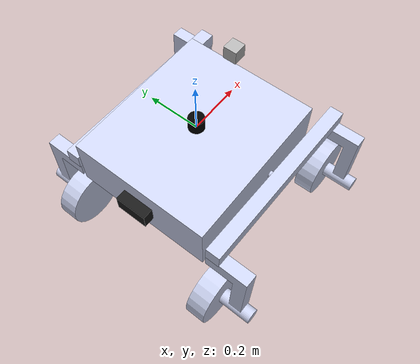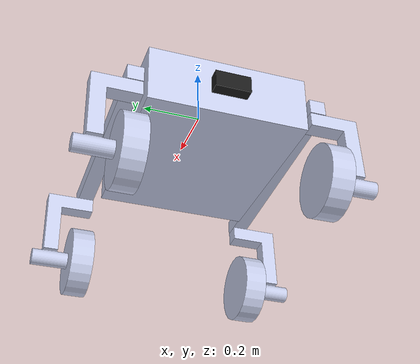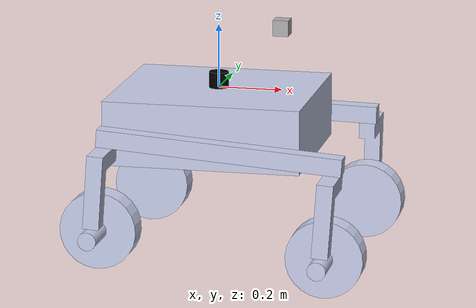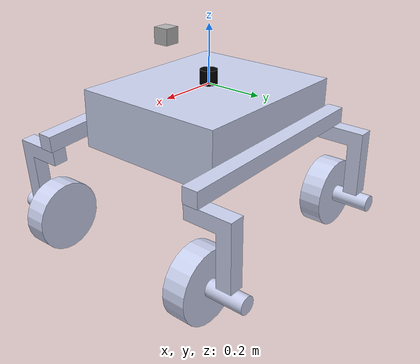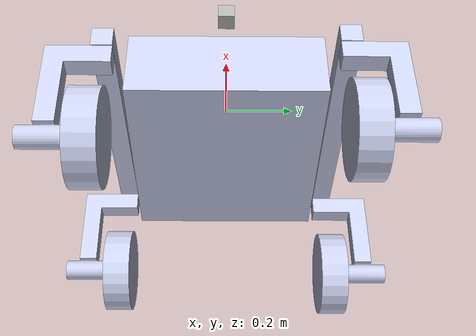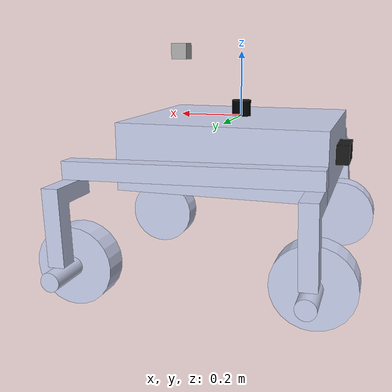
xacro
<?xml version="1.0" encoding="utf-8"?>
<!--
  Simplified Swerve Drive Robot Description
  Main xacro file that combines the robot structure with ROS2 control interfaces
  Usage: xacro simplified_swerve.urdf.xacro use_sim:=true/false
-->
<robot xmlns:xacro="http://www.ros.org/wiki/xacro" name="simplified_swerve">

  <!-- Include the robot structure macro -->
  <xacro:include filename="$(find urc_hw_description)/urdf/simplified_swerve/simplified_swerve_macro.xacro" />

  <!-- Include the status light -->
  <xacro:include filename="$(find urc_hw_description)/urdf/simplified_swerve/simplified_swerve_status_light.xacro" />

  <!-- Include the ROS2 control interfaces -->
  <xacro:include filename="$(find urc_hw_description)/urdf/simplified_swerve/simplified_swerve_ros2_control.xacro" />

  <!-- Include Sensor interfaces -->

  <!-- Define parameters with defaults -->
  <xacro:arg name="use_sim" default="false" />

  <!-- Create the robot structure -->
  <xacro:simplified_swerve />

  <!-- Add the status light -->
  <xacro:simplified_swerve_status_light />

  <!-- Add ROS2 control interfaces -->
  <xacro:simplified_swerve_ros2_control use_sim="$(arg use_sim)" />
  <!-- Add Sensor interfaces -->
  <xacro:include filename="$(find urc_hw_description)/urdf/simplified_swerve/simplified_swerve_sensors.xacro" />

  <!-- Add world link for simulation -->

  <!-- Add Gazebo-specific elements for simulation -->
  <xacro:if value="$(arg use_sim)">
    <!-- Gazebo physics settings -->
    <gazebo>
      <physics name="gazebo" type="ode">
        <gravity>0 0 -9.8066</gravity>
        <ode>
          <solver>
            <type>quick</type>
            <iters>10</iters>
            <sor>1.3</sor>
            <use_dynamic_moi_rescaling>0</use_dynamic_moi_rescaling>
          </solver>
          <constraints>
            <cfm>0.00001</cfm>
            <erp>0.2</erp>
            <contact_max_correcting_vel>100.0</contact_max_correcting_vel>
            <contact_surface_layer>0.001</contact_surface_layer>
          </constraints>
        </ode>
        <real_time_update_rate>1000.0</real_time_update_rate>
        <max_step_size>0.001</max_step_size>
        <real_time_factor>1</real_time_factor>
        <max_contacts>20</max_contacts>
      </physics>

    </gazebo>
  </xacro:if>

</robot>

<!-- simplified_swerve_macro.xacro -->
<!--
  Simplified Swerve Drive Macro
  This xacro macro defines the simplified swerve drive robot structure
-->
<robot xmlns:xacro="http://www.ros.org/wiki/xacro">

  <!-- Define the simplified swerve drive macro -->
  <xacro:macro name="simplified_swerve">

  <!-- replacing package:// -->
  <xacro:property name="package_path" value="file://$(find urc_hw_description)"/>

  <!-- Wheel Cylinder Geometry -->
  <xacro:property name="wheel_radius" value="0.119888" />
  <xacro:property name="wheel_length" value="0.0762" />
  <!-- remove wheel_origin_xyz if not needed -->
  <xacro:property name="wheel_origin_xyz_left" value="0 0.0381 0" />
  <xacro:property name="wheel_origin_xyz_right" value="0 -0.0381 0" />
  <xacro:property name="swivel_damping_factor" value = "0.8" />
  <xacro:property name="mu" value="0.8" />
    <link
      name="base_link">
      <inertial>
        <origin
          xyz="0 0 0"
          rpy="0 0 0" />
        <mass
          value="66.4215786923517" />
        <inertia
          ixx="1.81696810328787"
          ixy="-6.9338212464152E-17"
          ixz="7.20648103905395E-05"
          iyy="2.32403347252879"
          iyz="-9.74563613040897E-18"
          izz="3.69433679282844" />
      </inertial>
      <visual>
        <origin
          xyz="0 0 0"
          rpy="0 0 0" />
        <geometry>
          <mesh
            filename="${package_path}/models/simplified_swerve/Base_Link.STL" />
        </geometry>
        <material
          name="">
          <color
            rgba="0.792156862745098 0.819607843137255 0.933333333333333 1" />
        </material>
      </visual>
      <collision>
        <origin
          xyz="0 0 0"
          rpy="0 0 0" />
        <geometry>
          <mesh
            filename="${package_path}/models/simplified_swerve/Base_Link.STL" />
        </geometry>
      </collision>
    </link>
    <link
      name="L_Rocker_Link">
      <inertial>
        <origin
          xyz="-5.55111512312578E-17 0.0272622783776632 0.000169281253660614"
          rpy="0 0 0" />
        <mass
          value="2.2109729871291" />
        <inertia
          ixx="0.00109676826241139"
          ixy="-2.18257314584443E-18"
          ixz="-3.3881317890172E-19"
          iyy="0.106059793697663"
          iyz="3.15433975980145E-08"
          izz="0.106062641373692" />
      </inertial>
      <visual>
        <origin
          xyz="0 0 0"
          rpy="0 0 0" />
        <geometry>
          <mesh
            filename="${package_path}/models/simplified_swerve/L_Rocker_Link.STL" />
        </geometry>
        <material
          name="">
          <color
            rgba="0.792156862745098 0.819607843137255 0.933333333333333 1" />
        </material>
      </visual>
      <collision>
        <origin
          xyz="0 0 0"
          rpy="0 0 0" />
        <geometry>
          <mesh
            filename="${package_path}/models/simplified_swerve/L_Rocker_Link.STL" />
        </geometry>
      </collision>
    </link>
    <joint
      name="L_Rocker_Joint"
      type="revolute">
      <origin
        xyz="0.070358 0.2808 -0.127"
        rpy="0 0.024048 0" />
      <parent
        link="base_link" />
      <child
        link="L_Rocker_Link" />
      <axis
        xyz="0 1 0" />
      <limit
        lower="-0.523"
        upper="0.523"
        effort="1000"
        velocity="100" />
    </joint>
    <link
      name="FL_Swivel_Link">
      <inertial>
        <origin
          xyz="6.66133814775094E-16 0.0919295113383884 -0.157705012315022"
          rpy="0 0 0" />
        <mass
          value="1.20325341424635" />
        <inertia
          ixx="0.00643909515114176"
          ixy="1.86347248395946E-19"
          ixz="1.6940658945086E-19"
          iyy="0.00450109747410713"
          iyz="0.00143440655173121"
          izz="0.00244738563424939" />
      </inertial>
      <visual>
        <origin
          xyz="0 0 0"
          rpy="0 0 0" />
        <geometry>
          <mesh
            filename="${package_path}/models/simplified_swerve/FL_Swivel_Link.STL" />
        </geometry>
        <material
          name="">
          <color
            rgba="0.792156862745098 0.819607843137255 0.933333333333333 1" />
        </material>
      </visual>
      <collision>
        <origin
          xyz="0 0 0"
          rpy="0 0 0" />
        <geometry>
          <mesh
            filename="${package_path}/models/simplified_swerve/FL_Swivel_Link.STL" />
        </geometry>
      </collision>
    </link>
    <joint
      name="FL_Swivel_Joint"
      type="revolute">
      <origin
        xyz="0.35255 0.027178 0"
        rpy="0 0 -0.0018485" />
      <parent
        link="L_Rocker_Link" />
      <child
        link="FL_Swivel_Link" />
      <axis
        xyz="0 0 1" />
      <limit
        lower="-1.57"
        upper="1.57"
        effort="10"
        velocity="100" />
      <dynamics damping="${swivel_damping_factor}" friction="${mu}"/>
    </joint>
    <link
      name="FL_Wheel_Link">
      <inertial>
        <origin
          xyz="${wheel_origin_xyz_left}"
          rpy="0 0 0" />
        <mass
          value="3.24703989875836" />
        <inertia
          ixx="0.0138956270838154"
          ixy="3.76082628580909E-19"
          ixz="-3.52365706057789E-19"
          iyy="0.0246489637760063"
          iyz="-2.16522797141881E-20"
          izz="0.0138956270838154" />
      </inertial>
      <visual>
        <origin
          xyz="${wheel_origin_xyz_left}"
          rpy="${pi/2} 0 0" />
        <geometry>
          <cylinder radius="${wheel_radius}"  length="${wheel_length}" />
        </geometry>
        <material
          name="">
          <color
            rgba="0.792156862745098 0.819607843137255 0.933333333333333 1" />
        </material>
      </visual>
      <collision>
        <origin
          xyz="${wheel_origin_xyz_left}"
          rpy="${pi/2} 0 0" />
        <geometry>
          <cylinder radius="${wheel_radius}"  length="${wheel_length}" />
        </geometry>
      </collision>
    </link>
    <joint
      name="FL_Wheel_Joint"
      type="continuous">
      <origin
        xyz="0 -0.027051 -0.28423"
        rpy="0 0 0" />
      <parent
        link="FL_Swivel_Link" />
      <child
        link="FL_Wheel_Link" />
      <axis
        xyz="0 1 4.8618E-05" />
    </joint>
    <link
      name="BL_Swivel_Link">
      <inertial>
        <origin
          xyz="2.77555756156289E-17 0.0919295113383879 -0.157705012315023"
          rpy="0 0 0" />
        <mass
          value="1.20325341424635" />
        <inertia
          ixx="0.00643909515114176"
          ixy="8.470329472543E-21"
          ixz="-1.76182853028894E-19"
          iyy="0.00450109747410713"
          iyz="0.00143440655173121"
          izz="0.00244738563424939" />
      </inertial>
      <visual>
        <origin
          xyz="0 0 0"
          rpy="0 0 0" />
        <geometry>
          <mesh
            filename="${package_path}/models/simplified_swerve/BL_Swivel_Link.STL" />
        </geometry>
        <material
          name="">
          <color
            rgba="0.792156862745098 0.819607843137255 0.933333333333333 1" />
        </material>
      </visual>
      <collision>
        <origin
          xyz="0 0 0"
          rpy="0 0 0" />
        <geometry>
          <mesh
            filename="${package_path}/models/simplified_swerve/BL_Swivel_Link.STL" />
        </geometry>
      </collision>
    </link>
    <joint
      name="BL_Swivel_Joint"
      type="revolute">
      <origin
        xyz="-0.35255 0.027178 0"
        rpy="0 0 -0.0007666" />
      <parent
        link="L_Rocker_Link" />
      <child
        link="BL_Swivel_Link" />
      <axis
        xyz="0 0 1" />
      <limit
        lower="-1.57"
        upper="1.57"
        effort="10"
        velocity="100" />
      <dynamics damping="${swivel_damping_factor}" friction="${mu}"/>
    </joint>
    <link
      name="BL_Wheel_Link">
      <inertial>
        <origin
          xyz="${wheel_origin_xyz_left}"
          rpy="0 0 0" />
        <mass
          value="3.24703989875836" />
        <inertia
          ixx="0.0138956270838154"
          ixy="1.68559556503606E-19"
          ixz="-1.35525271560688E-19"
          iyy="0.0246489605438419"
          iyz="-5.89546790573159E-06"
          izz="0.0138956303159798" />
      </inertial>
      <visual>
        <origin
          xyz="${wheel_origin_xyz_left}"
          rpy="${pi/2} 0 0" />
        <geometry>
          <cylinder radius="${wheel_radius}"  length="${wheel_length}" />
        </geometry>
        <material
          name="">
          <color
            rgba="0.792156862745098 0.819607843137255 0.933333333333333 1" />
        </material>
      </visual>
      <collision>
        <origin
          xyz="${wheel_origin_xyz_left}"
          rpy="${pi/2} 0 0" />
        <geometry>
          <cylinder radius="${wheel_radius}"  length="${wheel_length}" />
        </geometry>
      </collision>
    </link>
    <joint
      name="BL_Wheel_Joint"
      type="continuous">
      <origin
        xyz="0 -0.027051 -0.28423"
        rpy="0.00054825 0 0" />
      <parent
        link="BL_Swivel_Link" />
      <child
        link="BL_Wheel_Link" />
      <axis
        xyz="0 1 0.00054817" />
    </joint>
    <link
      name="R_Rocker_Link">
      <inertial>
        <origin
          xyz="-5.55111512312578E-17 -0.0272622783776632 0.000169281253660586"
          rpy="0 0 0" />
        <mass
          value="2.2109729871291" />
        <inertia
          ixx="0.00109676826241139"
          ixy="6.2804503377809E-19"
          ixz="-1.87702501111553E-18"
          iyy="0.106059793697663"
          iyz="-3.15433975979013E-08"
          izz="0.106062641373692" />
      </inertial>
      <visual>
        <origin
          xyz="0 0 0"
          rpy="0 0 0" />
        <geometry>
          <mesh
            filename="${package_path}/models/simplified_swerve/R_Rocker_Link.STL" />
        </geometry>
        <material
          name="">
          <color
            rgba="0.792156862745098 0.819607843137255 0.933333333333333 1" />
        </material>
      </visual>
      <collision>
        <origin
          xyz="0 0 0"
          rpy="0 0 0" />
        <geometry>
          <mesh
            filename="${package_path}/models/simplified_swerve/R_Rocker_Link.STL" />
        </geometry>
      </collision>
    </link>
    <joint
      name="R_Rocker_Joint"
      type="revolute">
      <origin
        xyz="0.070358 -0.2808 -0.127"
        rpy="0 0.069977 0" />
      <parent
        link="base_link" />
      <child
        link="R_Rocker_Link" />
      <axis
        xyz="0 1 0" />
      <limit
        lower="-0.523"
        upper="0.523"
        effort="1000"
        velocity="100" />
    </joint>
    <link
      name="FR_Swivel_Link">
      <inertial>
        <origin
          xyz="-9.99200722162641E-16 -0.0919295113383881 -0.157705012315022"
          rpy="0 0 0" />
        <mass
          value="1.20325341424635" />
        <inertia
          ixx="0.00643909515114175"
          ixy="-1.35525271560688E-20"
          ixz="-7.18283939271647E-19"
          iyy="0.00450109747410712"
          iyz="-0.00143440655173121"
          izz="0.00244738563424939" />
      </inertial>
      <visual>
        <origin
          xyz="0 0 0"
          rpy="0 0 0" />
        <geometry>
          <mesh
            filename="${package_path}/models/simplified_swerve/FR_Swivel_Link.STL" />
        </geometry>
        <material
          name="">
          <color
            rgba="0.792156862745098 0.819607843137255 0.933333333333333 1" />
        </material>
      </visual>
      <collision>
        <origin
          xyz="0 0 0"
          rpy="0 0 0" />
        <geometry>
          <mesh
            filename="${package_path}/models/simplified_swerve/FR_Swivel_Link.STL" />
        </geometry>
      </collision>
    </link>
    <joint
      name="FR_Swivel_Joint"
      type="revolute">
      <origin
        xyz="0.35255 -0.027178 0"
        rpy="0 0 0.0074664" />
      <parent
        link="R_Rocker_Link" />
      <child
        link="FR_Swivel_Link" />
      <axis
        xyz="0 0 1" />
      <limit
        lower="-1.57"
        upper="1.57"
        effort="10"
        velocity="100" />
      <dynamics damping="${swivel_damping_factor}" friction="${mu}"/>

    </joint>
    <link
      name="FR_Wheel_Link">
      <inertial>
        <origin
          xyz="${wheel_origin_xyz_right}"
          rpy="0 0 0" />
        <mass
          value="3.24703989875836" />
        <inertia
          ixx="0.0138956270838154"
          ixy="3.65918233213858E-19"
          ixz="-3.25260651745651E-19"
          iyy="0.0246489637760063"
          iyz="-2.70203510174122E-18"
          izz="0.0138956270838154" />
      </inertial>
      <visual>
        <origin
          xyz="${wheel_origin_xyz_right}"
          rpy="${pi/2} 0 0" />
        <geometry>
          <cylinder radius="${wheel_radius}"  length="${wheel_length}" />
        </geometry>
        <material
          name="">
          <color
            rgba="0.792156862745098 0.819607843137255 0.933333333333333 1" />
        </material>
      </visual>
      <collision>
        <origin
          xyz="${wheel_origin_xyz_right}"
          rpy="${pi/2} 0 0" />
        <geometry>
          <cylinder radius="${wheel_radius}"  length="${wheel_length}" />
        </geometry>
      </collision>
    </link>
    <joint
      name="FR_Wheel_Joint"
      type="continuous">
      <origin
        xyz="0 0.027051 -0.28423"
        rpy="0 0 0" />
      <parent
        link="FR_Swivel_Link" />
      <child
        link="FR_Wheel_Link" />
      <axis
        xyz="9.257E-05 1 0" />
    </joint>
    <link
      name="BR_Swivel_Link">
      <inertial>
        <origin
          xyz="1.04083408558608E-16 -0.091929511338388 -0.157705012315022"
          rpy="0 0 0" />
        <mass
          value="1.20325341424635" />
        <inertia
          ixx="0.00643909515114176"
          ixy="-8.13151629364128E-20"
          ixz="-3.79470760369927E-19"
          iyy="0.00450109747410713"
          iyz="-0.00143440655173121"
          izz="0.00244738563424939" />
      </inertial>
      <visual>
        <origin
          xyz="0 0 0"
          rpy="0 0 0" />
        <geometry>
          <mesh
            filename="${package_path}/models/simplified_swerve/BR_Swivel_Link.STL" />
        </geometry>
        <material
          name="">
          <color
            rgba="0.792156862745098 0.819607843137255 0.933333333333333 1" />
        </material>
      </visual>
      <collision>
        <origin
          xyz="0 0 0"
          rpy="0 0 0" />
        <geometry>
          <mesh
            filename="${package_path}/models/simplified_swerve/BR_Swivel_Link.STL" />
        </geometry>
      </collision>
    </link>
    <joint
      name="BR_Swivel_Joint"
      type="revolute">
      <origin
        xyz="-0.35255 -0.027178 0"
        rpy="0 0 -0.0073335" />
      <parent
        link="R_Rocker_Link" />
      <child
        link="BR_Swivel_Link" />
      <axis
        xyz="0 0 1" />
      <limit
        lower="-1.57"
        upper="1.57"
        effort="10"
        velocity="100" />
      <dynamics damping="${swivel_damping_factor}" friction="${mu}"/>
    </joint>
    <link
      name="BR_Wheel_Link">
      <inertial>
        <origin
          xyz="${wheel_origin_xyz_right}"
          rpy="0 0 0" />
        <mass
          value="3.24703989875836" />
        <inertia
          ixx="0.0138956270838154"
          ixy="2.3039296165317E-19"
          ixz="8.67361737988404E-19"
          iyy="0.0246489637760063"
          iyz="1.40946282423116E-18"
          izz="0.0138956270838154" />
      </inertial>
      <visual>
        <origin
          xyz="${wheel_origin_xyz_right}"
          rpy="${pi/2} 0 0" />
        <geometry>
          <cylinder radius="${wheel_radius}"  length="${wheel_length}" />
        </geometry>
        <material
          name="">
          <color
            rgba="0.792156862745098 0.819607843137255 0.933333333333333 1" />
        </material>
      </visual>
      <collision>
        <origin
          xyz="${wheel_origin_xyz_right}"
          rpy="${pi/2} 0 0" />
        <geometry>
          <cylinder radius="${wheel_radius}"  length="${wheel_length}" />
        </geometry>
      </collision>
    </link>
    <joint
      name="BR_Wheel_Joint"
      type="continuous">
      <origin
        xyz="0 0.027051 -0.28423"
        rpy="0 0 0" />
      <parent
        link="BR_Swivel_Link" />
      <child
        link="BR_Wheel_Link" />
      <axis
        xyz="-9.257E-05 1 0" />
    </joint>
  </xacro:macro>

</robot>

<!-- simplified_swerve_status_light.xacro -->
<!--
  Simplified Swerve Status Light
  Rear status light required by the URC autonomy mission rules
  (red: autonomous, blue: teleoperation, flashing green: arrived at target)
-->
<robot xmlns:xacro="http://www.ros.org/wiki/xacro">

  <xacro:macro name="simplified_swerve_status_light">

    <xacro:property name="status_light_size_x" value="0.04" />
    <xacro:property name="status_light_size_y" value="0.12" />
    <xacro:property name="status_light_size_z" value="0.06" />

    <link name="status_light_link">
      <inertial>
        <mass value="0.05" />
        <origin xyz="0 0 0" rpy="0 0 0" />
        <inertia ixx="0.0001" ixy="0" ixz="0" iyy="0.0001" iyz="0" izz="0.0001" />
      </inertial>
      <visual>
        <origin xyz="0 0 0" rpy="0 0 0" />
        <geometry>
          <box size="${status_light_size_x} ${status_light_size_y} ${status_light_size_z}" />
        </geometry>
        <material name="status_light_off">
          <color rgba="0.1 0.1 0.1 1" />
        </material>
      </visual>
    </link>

    <!-- Back edge of the chassis top (base_link spans x = -0.308 to 0.308, top at z = 0) -->
    <joint name="status_light_joint" type="fixed">
      <parent link="base_link" />
      <child link="status_light_link" />
      <origin xyz="${-0.308 - status_light_size_x / 2} 0 -0.1" rpy="0 0 0" />
    </joint>

    <!-- Keep the light as its own link in Gazebo so its color can be changed by name -->
    <gazebo reference="status_light_joint">
      <preserveFixedJoint>true</preserveFixedJoint>
    </gazebo>

  </xacro:macro>

</robot>

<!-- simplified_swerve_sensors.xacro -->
<robot xmlns:xacro="http://www.ros.org/wiki/xacro">
<gazebo>
 <plugin filename="libignition-gazebo-imu-system"
            name="ignition::gazebo::systems::Imu"/>
<plugin filename="ignition-gazebo-sensors-system"
            name="ignition::gazebo::systems::Sensors">
      <render_engine>ogre2</render_engine>
    </plugin>
     <plugin filename="ignition-gazebo-navsat-system" name="ignition::gazebo::systems::NavSat"/>
</gazebo>

    <!-- Lidar Link -->
    <link name="lidar_link">
      <inertial>
        <mass value="0.1"/>
        <origin xyz="0 0 0" rpy="0 0 0"/>
        <inertia ixx="0.001" ixy="0" ixz="0" iyy="0.001" iyz="0" izz="0.001"/>
      </inertial>
      <visual>
        <origin xyz="0 0 0" rpy="0 0 0"/>
        <geometry>
          <cylinder radius="0.03" length="0.05"/>
        </geometry>
        <material name="black">
          <color rgba="0 0 0 1"/>
        </material>
      </visual>

    </link>

    <!-- Joint to attach lidar to base -->
    <joint name="lidar_joint" type="fixed">
      <parent link="base_link"/>
      <child link="lidar_link"/>
      <origin xyz="0 0 0.025" rpy="0 0 0"/>
    </joint>

    <!-- Gazebo plugin for lidar -->
    <gazebo reference="lidar_link">
      <sensor name="lidar" type="gpu_lidar">
        <pose>0 0 0 0 0 0</pose>
        <always_on>true</always_on>
        <visualize>true</visualize>
        <update_rate>10</update_rate>
        <topic>scan</topic>
        <gz_frame_id>lidar_link</gz_frame_id>

        <lidar>
          <scan>
            <horizontal>
              <samples>1000</samples>
              <resolution>1</resolution>
              <min_angle>-3.14</min_angle>
              <max_angle>3.14</max_angle>
            </horizontal>
            <vertical>
              <samples>16</samples>
              <resolution>1</resolution>
              <min_angle>-0.366519</min_angle>
              <max_angle>0.366519</max_angle>
            </vertical>
          </scan>
          <range>
            <min>0.05</min>
            <max>65.0</max>
            <resolution>0.01</resolution>
          </range>
          <noise>
            <type>gaussian</type>
            <mean>0.0</mean>
            <stddev>0.01</stddev>
          </noise>
          <frame_id>lidar_link</frame_id>
        </lidar>
      </sensor>
    </gazebo>

    <link name="imu_link">
      <inertial>
        <mass value="0.01"/>
        <origin xyz="0 0 0" rpy="0 0 0"/>
        <inertia ixx="0.001" ixy="0" ixz="0" iyy="0.001" iyz="0" izz="0.001"/>
      </inertial>

      <collision name="imu_collision">
        <geometry>
          <box size="0.001 0.001 0.001"/>  <!-- tiny collision -->
        </geometry>
      </collision>

      <visual name="imu_visual">
        <origin xyz="0 0 0" rpy="0 0 0"/>
        <geometry>
          <box size="0.001 0.001 0.001"/>
        </geometry>
      </visual>
    </link>

    <joint name="imu_joint" type="fixed">
      <parent link="base_link"/>
      <child link="imu_link"/>
      <origin xyz="0.1 0 0" rpy="0 0 0"/>
    </joint>

    <gazebo reference="imu_link">
      <sensor name="imu_sensor" type="imu">
        <always_on>1</always_on>
        <update_rate>100</update_rate>
        <visualize>true</visualize>
        <topic>/imu/data_raw</topic>
        <imu>
          <angular_velocity>
            <noise>
              <type>gaussian</type>
              <mean>0.0</mean>
              <stddev>0.0005</stddev>
            </noise>
          </angular_velocity>
          <orientation>
            <noise>
              <type>gaussian</type>
              <mean>0.0</mean>
              <stddev>0.001</stddev>
            </noise>
          </orientation>
          <linear_acceleration>
            <noise>
              <type>gaussian</type>
              <mean>0.0</mean>
              <stddev>0.01</stddev>
            </noise>
          </linear_acceleration>
        </imu>
      </sensor>
    </gazebo>

    <!-- GPS Link -->
    <link name="gps_link">
      <inertial>
        <mass value="0.01"/>
        <origin xyz="0 0 0" rpy="0 0 0"/>
        <inertia ixx="0.001" ixy="0" ixz="0" iyy="0.001" iyz="0" izz="0.001"/>
      </inertial>

      <!-- Tiny collision/visual just to have a frame in TF -->
      <collision name="gps_collision">
        <geometry>
          <box size="0.001 0.001 0.001"/>
        </geometry>
      </collision>

      <visual name="gps_visual">
        <origin xyz="0 0 0" rpy="0 0 0"/>
        <geometry>
          <box size="0.001 0.001 0.001"/>
        </geometry>
      </visual>
    </link>

    <!-- Joint to attach GPS to base -->
    <joint name="gps_joint" type="fixed">
      <parent link="base_link"/>
      <child link="gps_link"/>
      <!-- Slightly above base so it's easy to visualize -->
      <origin xyz="0 0 0.2" rpy="0 0 0"/>
    </joint>

     <gazebo reference="gps_link">
        <sensor name="gps" type="navsat">
            <always_on>1</always_on>
            <update_rate>2</update_rate>
            <visualize>true</visualize>
            <topic>gps</topic>
            <!-- Ensure downstream messages can use this frame name -->
            <gz_frame_id>gps_link</gz_frame_id>
            <navsat>
                <latitude>
                    <noise>
                        <type>gaussian</type>
                        <mean>0.0</mean>
                        <stddev>0.15</stddev>
                    </noise>
                </latitude>
                <longitude>
                    <noise>
                        <type>gaussian</type>
                        <mean>0.0</mean>
                        <stddev>0.15</stddev>
                    </noise>
                </longitude>
                <altitude>
                    <noise>
                        <type>gaussian</type>
                        <mean>0.0</mean>
                        <stddev>0.15</stddev>
                    </noise>
                </altitude>
            </navsat>
        </sensor>
    </gazebo>

    <!-- Camera Link -->
    <link name="camera_link">
      <inertial>
        <mass value="0.01"/>
        <origin xyz="0 0 0.3" rpy="0 0 0"/>
        <inertia ixx="0.001" ixy="0" ixz="0" iyy="0.001" iyz="0" izz="0.001"/>
      </inertial>

      <!-- Tiny collision/visual just to have a frame in TF -->
      <collision name="camera_collision">
        <geometry>
          <box size="0.05 0.05 0.05"/>
        </geometry>
      </collision>

      <visual name="camera_visual">
        <origin xyz="0.1 0 0.1" rpy="0 0 0"/>
        <geometry>
          <box size="0.05 0.05 0.05"/>
        </geometry>
      </visual>
    </link>

    <!-- Joint to attach camera to base -->
    <joint name="camera_joint" type="fixed">
      <parent link="base_link"/>
      <child link="camera_link"/>
      <!-- Slightly above base so it's easy to visualize -->
    <origin xyz="0.1 0 0.1" rpy="0 0 0"/>
    </joint>

    <link name="camera_optical_frame"/>
    <joint name="camera_optical_joint" type="fixed">
      <parent link="camera_link"/>
      <child link="camera_optical_frame"/>
      <origin xyz="0 0 0" rpy="-1.57079632679 0 -1.57079632679"/>
    </joint>

    <gazebo reference="camera_link">
      <sensor name="camera" type="camera">
        <pose>0 0 0 0 0 0</pose>
        <always_on>1</always_on>
        <update_rate>30</update_rate>
        <visualize>true</visualize>
        <topic>camera/image_raw</topic>
        <gz_frame_id>camera_optical_frame</gz_frame_id>
        <camera>
          <horizontal_fov>1.047</horizontal_fov>
          <image>
            <width>640</width>
            <height>480</height>
            <format>R8G8B8</format>
          </image>
          <clip>
            <near>0.1</near>
            <far>100</far>
          </clip>
        </camera>
      </sensor>
    </gazebo>
</robot>
